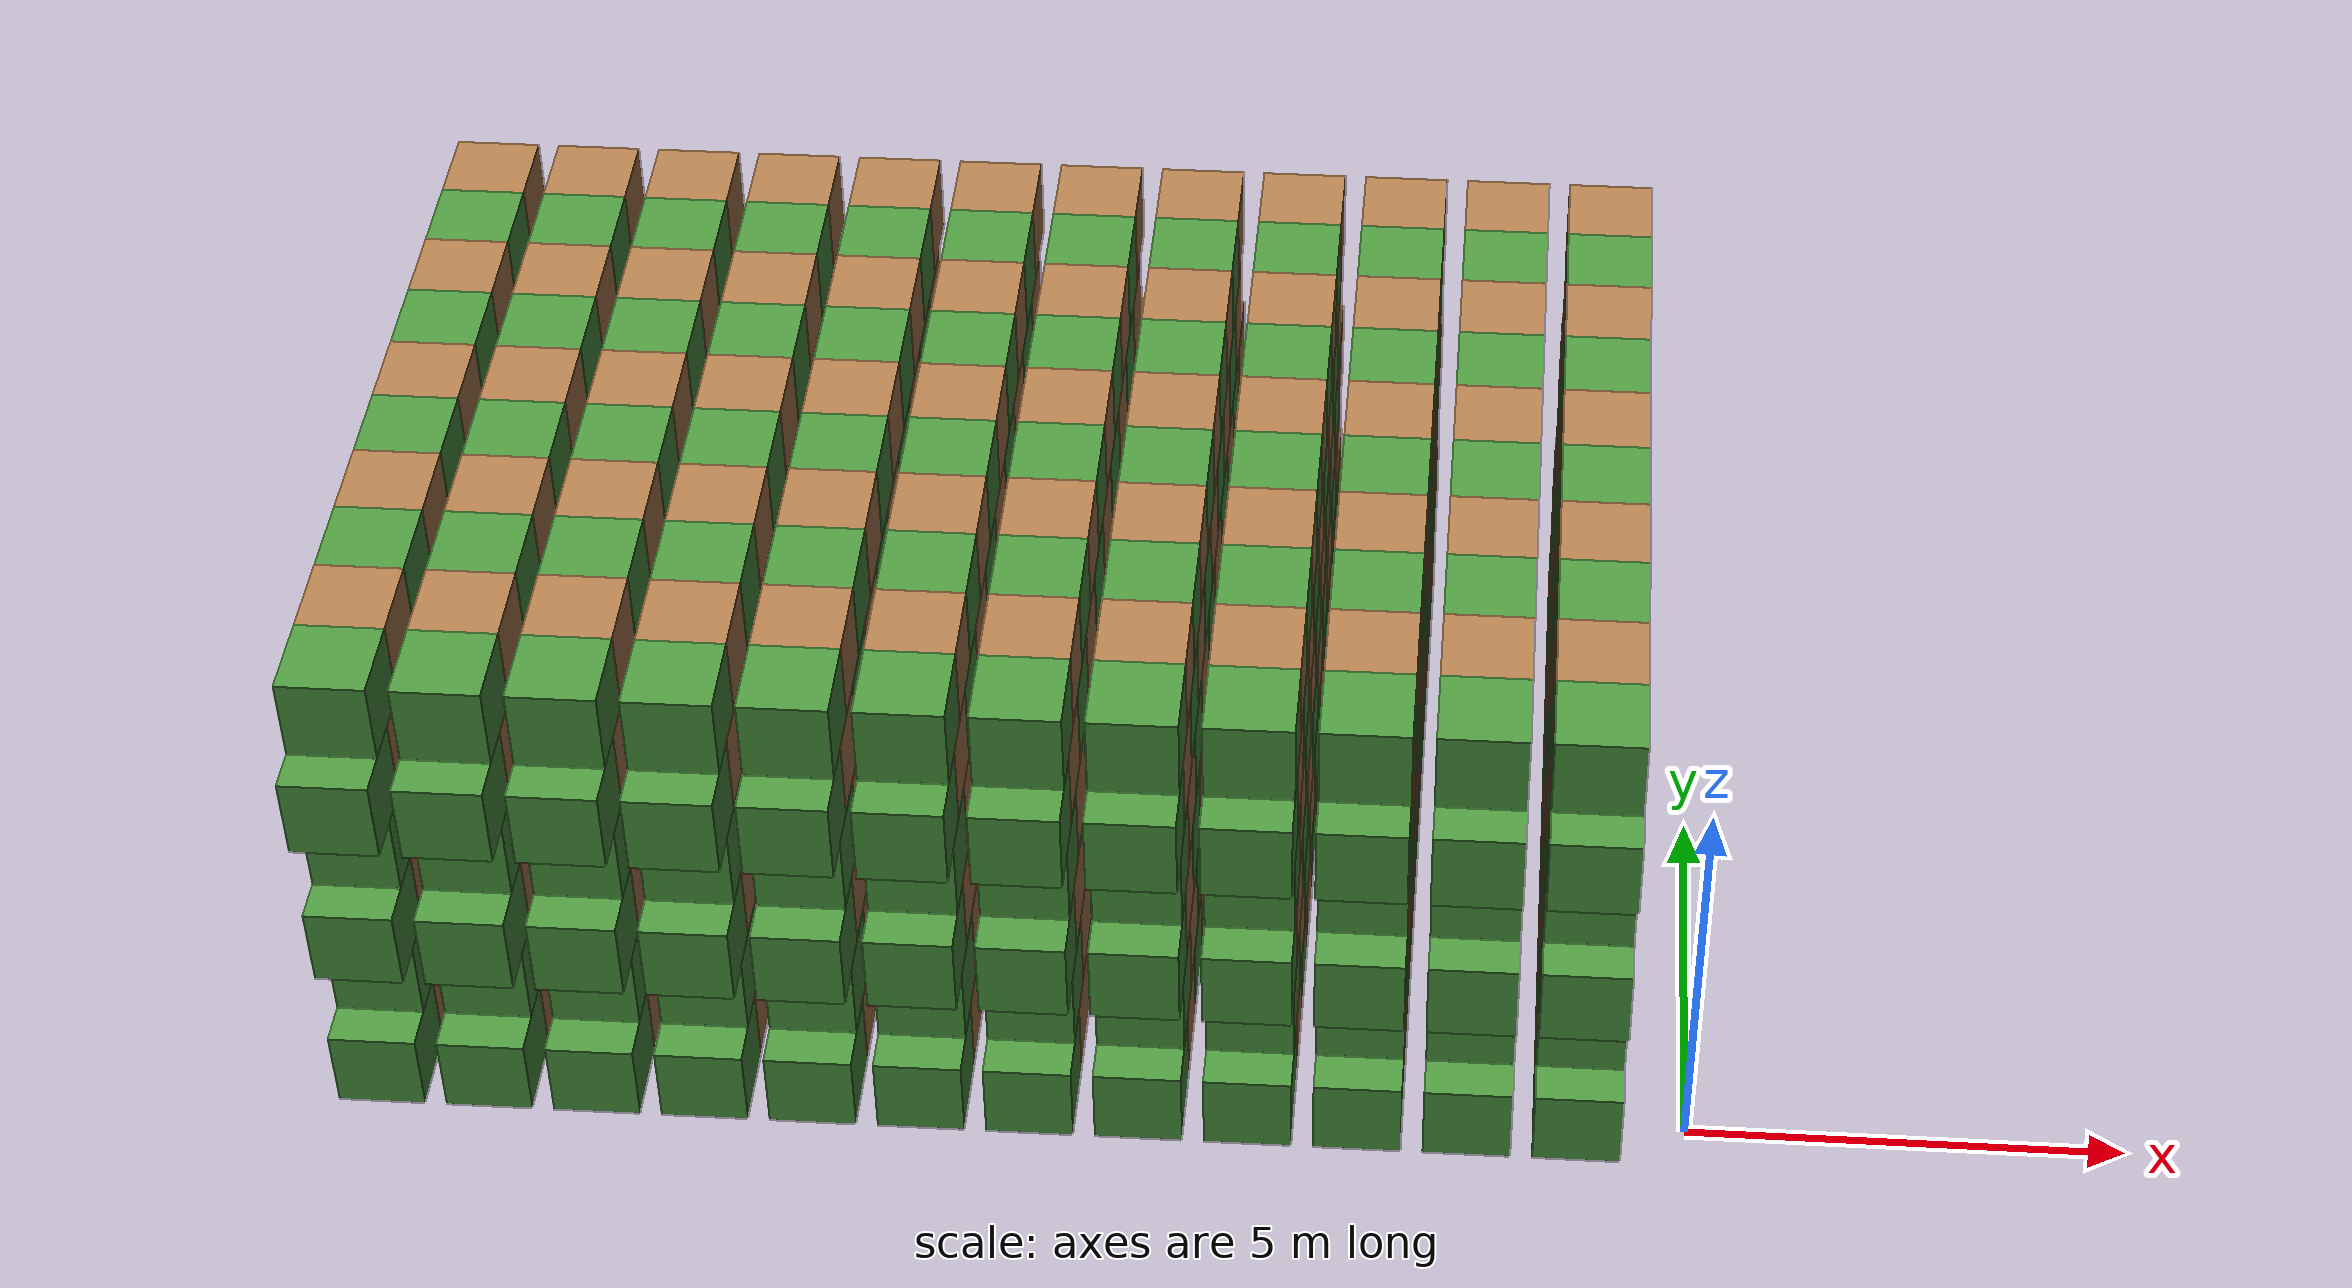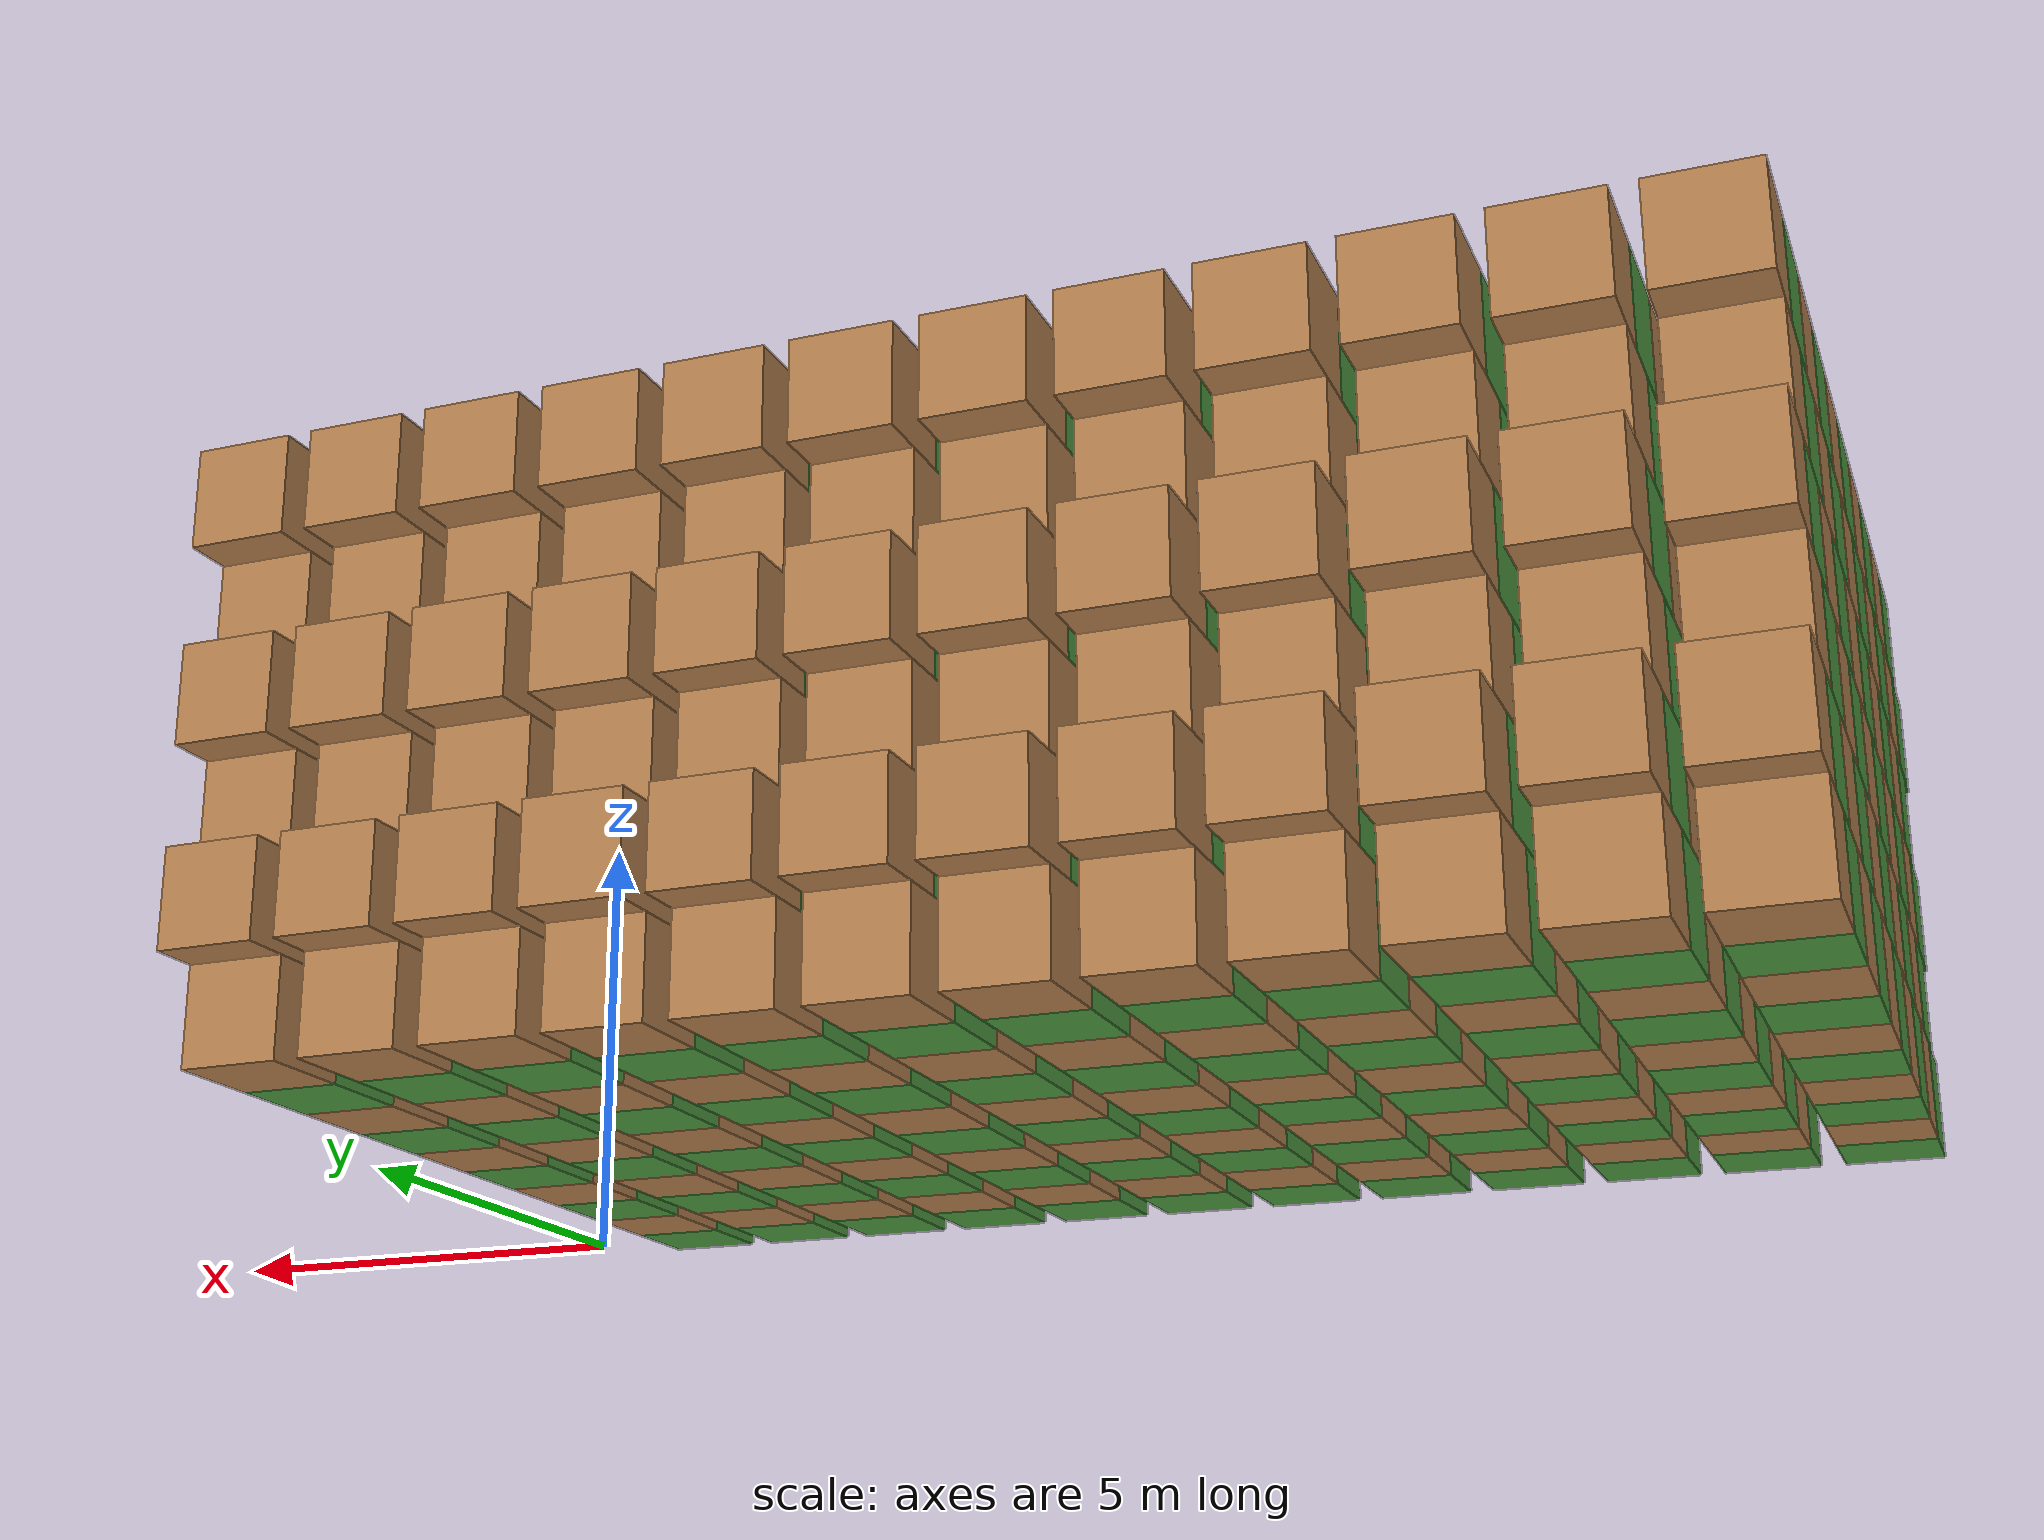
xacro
<?xml version="1.0"?>
<robot name="continuous_pendulum"
       xmlns:xi="http://www.w3.org/2001/XInclude"
       xmlns:gazebo="http://playerstage.sourceforge.net/gazebo/xmlschema/#gz"
       xmlns:model="http://playerstage.sourceforge.net/gazebo/xmlschema/#model"
       xmlns:sensor="http://playerstage.sourceforge.net/gazebo/xmlschema/#sensor"
       xmlns:body="http://playerstage.sourceforge.net/gazebo/xmlschema/#body"
       xmlns:geom="http://playerstage.sourceforge.net/gazebo/xmlschema/#geom"
       xmlns:joint="http://playerstage.sourceforge.net/gazebo/xmlschema/#joint"
       xmlns:interface="http://playerstage.sourceforge.net/gazebo/xmlschema/#interface"
       xmlns:rendering="http://playerstage.sourceforge.net/gazebo/xmlschema/#rendering"
       xmlns:renderable="http://playerstage.sourceforge.net/gazebo/xmlschema/#renderable"
       xmlns:controller="http://playerstage.sourceforge.net/gazebo/xmlschema/#controller"
       xmlns:xacro="http://ros.org/wiki/xacro"
       xmlns:physics="http://playerstage.sourceforge.net/gazebo/xmlschema/#physics">

  <xacro:property name="moi" value="0.01"/>
  <xacro:property name="mass" value="1.0"/>
  <xacro:property name="kp" value="100000000000.0"/> <!-- erp of ~1e-2 -->
  <xacro:property name="kd" value="1000000000.0"/> <!-- cfm of ~1e-10 -->

  <link name="world"/>
  <xacro:macro name="one_link" params="link_name parent *origin material">
    <joint name="${link_name}_joint" type="floating" >
      <insert_block name="origin"/>
      <parent link="${parent}" />
      <child link="${link_name}" />
      <dynamics damping="0.0" />
    </joint>
    <link name="${link_name}">
      <inertial >
        <mass value="${mass}" />
        <origin xyz="0 0 0" />
        <inertia  ixx="${moi}" ixy="0.0"  ixz="0.0"  iyy="${moi}"  iyz="0.0"  izz="${moi}" />
      </inertial>
      <visual >
        <origin xyz="0 0 0.5" rpy="0 0 0" />
        <geometry>
          <box size="1 1 1" />
        </geometry>
      </visual>
      <collision >
        <origin xyz="0 0 0.5" rpy="0 0 0" />
        <geometry>
          <box size="1 1 1" />
        </geometry>
      </collision>
    </link>
    <gazebo reference="${link_name}">
      <kp>${kp}</kp>
      <kd>${kd}</kd>
      <material>${material}</material>
      <turnGravityOff>false</turnGravityOff>
      <selfCollide>true</selfCollide>
    </gazebo>
  </xacro:macro>

  <xacro:macro name="box_layer" params="height offset shift">
    <xacro:one_link link_name="${offset}_link${height}0" parent="world" material="Gazebo/GrassFloor"> <origin xyz="${offset} 0.${shift} ${height}" rpy="0 0 0"/> </xacro:one_link>
    <xacro:one_link link_name="${offset}_link${height}1" parent="world" material="Gazebo/LightWood">  <origin xyz="${offset} 1.${shift} ${height}" rpy="0 0 0"/> </xacro:one_link>
    <xacro:one_link link_name="${offset}_link${height}2" parent="world" material="Gazebo/GrassFloor"> <origin xyz="${offset} 2.${shift} ${height}" rpy="0 0 0"/> </xacro:one_link>
    <xacro:one_link link_name="${offset}_link${height}3" parent="world" material="Gazebo/LightWood">  <origin xyz="${offset} 3.${shift} ${height}" rpy="0 0 0"/> </xacro:one_link>
    <xacro:one_link link_name="${offset}_link${height}4" parent="world" material="Gazebo/GrassFloor"> <origin xyz="${offset} 4.${shift} ${height}" rpy="0 0 0"/> </xacro:one_link>
    <xacro:one_link link_name="${offset}_link${height}5" parent="world" material="Gazebo/LightWood">  <origin xyz="${offset} 5.${shift} ${height}" rpy="0 0 0"/> </xacro:one_link>
    <xacro:one_link link_name="${offset}_link${height}6" parent="world" material="Gazebo/GrassFloor"> <origin xyz="${offset} 6.${shift} ${height}" rpy="0 0 0"/> </xacro:one_link>
    <xacro:one_link link_name="${offset}_link${height}7" parent="world" material="Gazebo/LightWood">  <origin xyz="${offset} 7.${shift} ${height}" rpy="0 0 0"/> </xacro:one_link>
    <xacro:one_link link_name="${offset}_link${height}8" parent="world" material="Gazebo/GrassFloor"> <origin xyz="${offset} 8.${shift} ${height}" rpy="0 0 0"/> </xacro:one_link>
    <xacro:one_link link_name="${offset}_link${height}9" parent="world" material="Gazebo/LightWood">  <origin xyz="${offset} 9.${shift} ${height}" rpy="0 0 0"/> </xacro:one_link>
  </xacro:macro>

  <xacro:macro name="interlaced_wall" params="offset">
    <xacro:box_layer offset="${offset}" height="0" shift="0" />
    <xacro:box_layer offset="${offset}" height="1" shift="5" />
    <xacro:box_layer offset="${offset}" height="2" shift="0" />
    <xacro:box_layer offset="${offset}" height="3" shift="5" />
    <xacro:box_layer offset="${offset}" height="4" shift="0" />
    <xacro:box_layer offset="${offset}" height="5" shift="5" />
  </xacro:macro>

  <xacro:interlaced_wall offset="-1.25" />
  <xacro:interlaced_wall offset="-2.5" />
  <xacro:interlaced_wall offset="-3.75" />
  <xacro:interlaced_wall offset="-5" />
  <xacro:interlaced_wall offset="-6.25" />
  <xacro:interlaced_wall offset="-7.5" />
  <xacro:interlaced_wall offset="-8.75" />
  <xacro:interlaced_wall offset="-10.0" />
  <xacro:interlaced_wall offset="-11.25" />
  <xacro:interlaced_wall offset="-12.5" />
  <xacro:interlaced_wall offset="-13.75" />
  <xacro:interlaced_wall offset="-15" />

</robot>
